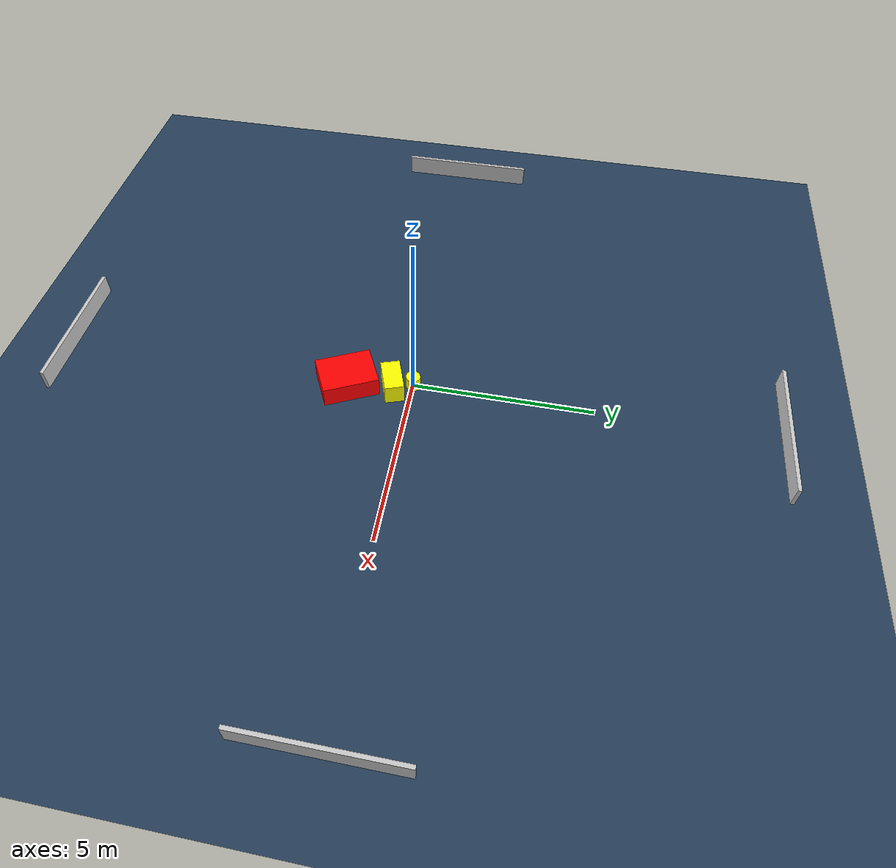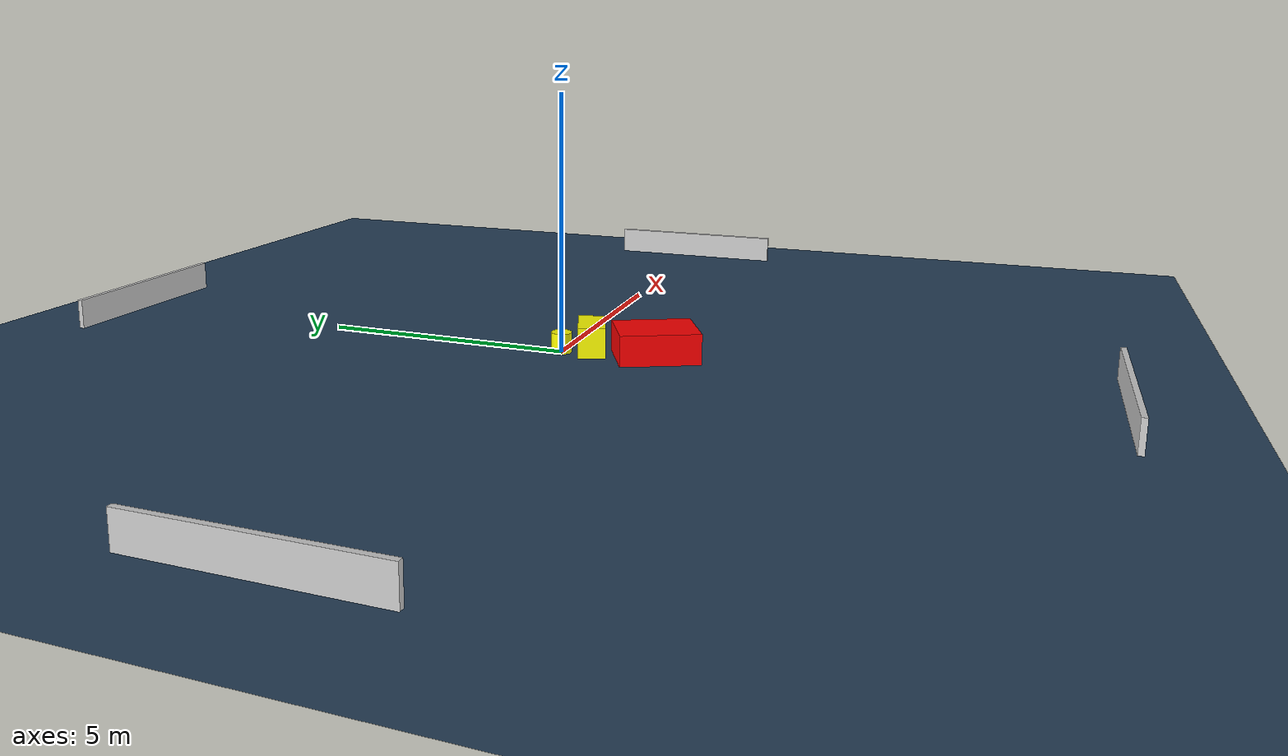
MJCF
<?xml version="1.0" ?>
<mujoco model="generated_environment">
  <option timestep="0.01" integrator="RK4" cone="elliptic"/>
  <default>
    <geom density="1"/>
  </default>
  <asset>
    <texture builtin="gradient" height="3072" name="skybox" rgb1="0.3 0.5 0.7" rgb2="0 0 0" type="skybox" width="512"/>
    <texture builtin="checker" height="300" name="groundplane" rgb1="0.2 0.3 0.4" rgb2="0.1 0.2 0.3" type="2d" width="300"/>
    <material name="groundplane" reflectance="0.2" texrepeat="5 5" texture="groundplane"/>
  </asset>
  <worldbody>
    <light dir="0 0 -1" directional="true" pos="0 0 1.5"/>
    <geom condim="3" friction="0.5 0.005 0.001" material="groundplane" name="floor" pos="0 0 0" size="0 0 0.05" type="plane"/>
    <body name="walls">
      <geom name="wall_1" condim="4" pos="-10.0 0.0 0.3" rgba="0.800000011920929 0.800000011920929 0.800000011920929 1.0" size="0.05 2.0 0.3" type="box"/>
      <geom name="wall_2" condim="4" pos="10.0 0.0 0.3" rgba="0.800000011920929 0.800000011920929 0.800000011920929 1.0" size="0.05 2.0 0.3" type="box"/>
      <geom name="wall_3" condim="4" pos="0.0 -10.0 0.3" rgba="0.800000011920929 0.800000011920929 0.800000011920929 1.0" size="2.0 0.05 0.3" type="box"/>
      <geom name="wall_4" condim="4" pos="0.0 10.0 0.3" rgba="0.800000011920929 0.800000011920929 0.800000011920929 1.0" size="2.0 0.05 0.3" type="box"/>
    </body>
    <body name="robot">
      <joint name="joint_x" type="slide" pos="0 0 0" axis="1 0 0"/>
      <joint name="joint_y" type="slide" pos="0 0 0" axis="0 1 0"/>
      <geom name="robot" type="cylinder" pos="0.0 0.0 0.2" size="0.2 0.2 0.0" mass="5.0" friction="1.0 0.005 0.0001" condim="4" rgba="1.0 1.0 0.0 1.0"/>
    </body>
    <body name="obstacle_1_movable">
      <geom name="obstacle_1_movable" condim="4" pos="0.2082418812901024 -0.5475652216587796 0.3" euler="0 0 109.16688313198172" friction="0.0 0.005 0.001" rgba="1.0 1.0 0.0 1.0" size="0.26820413888738304 0.48046196061409496 0.3" type="box" mass="0.1"/>
      <joint type="free"/>
    </body>
    <body name="obstacle_2_static">
      <geom name="obstacle_2_static" condim="4" pos="0.28785848281521625 -1.8116953328606649 0.3" euler="0 0 26.286109077517" friction="0.0 0.005 0.001" rgba="1.0 0.0 0.0 1.0" size="0.5818742184610328 0.7752499113409901 0.3" type="box"/>
    </body>
  </worldbody>
  <actuator>
    <motor name="actuator_x" joint="joint_x" gear="1" ctrlrange="-1 1"/>
    <motor name="actuator_y" joint="joint_y" gear="1" ctrlrange="-1 1"/>
  </actuator>
</mujoco>
